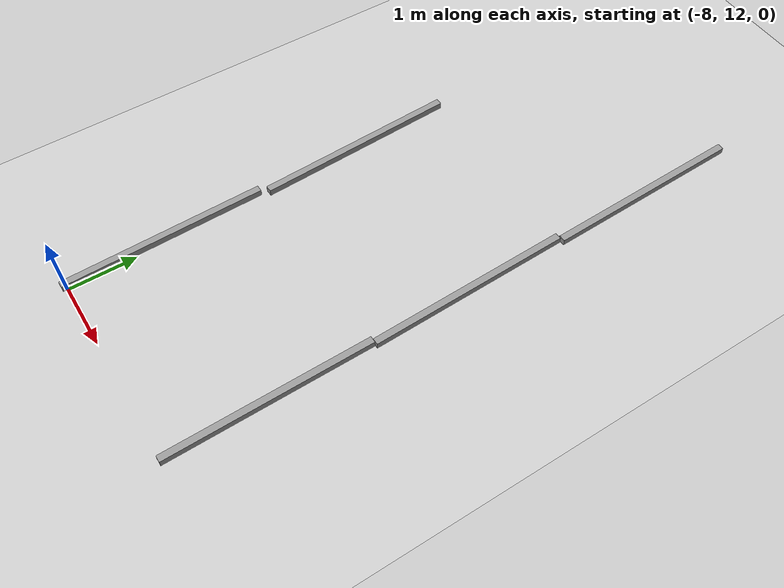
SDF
<sdf version="1.6">
 <world name="default">
  <model name="ground_plane">
   <static>1</static>
   <link name="link">
    <collision name="collision">
     <geometry><plane><normal>0 0 1</normal><size>100 100</size></plane></geometry>
     <surface>
      <contact><collide_bitmask>65535</collide_bitmask></contact>
      <friction><ode><mu>100</mu><mu2>50</mu2></ode></friction>
     </surface>
    </collision>
    <visual name="visual">
     <cast_shadows>0</cast_shadows>
     <geometry><plane><normal>0 0 1</normal><size>100 100</size></plane></geometry>
     <material>
      <script><uri>file://media/materials/scripts/gazebo.material</uri><name>Gazebo/Grey</name></script>
     </material>
    </visual>
   </link>
  </model>
  <model name="ruler_y_clone_0_clone">
   <link name="link_2">
    <inertial>
     <mass>1</mass>
     <inertia>
      <ixx>0.166667</ixx>
      <ixy>0</ixy>
      <ixz>0</ixz>
      <iyy>0.166667</iyy>
      <iyz>0</iyz>
      <izz>0.166667</izz>
     </inertia>
    </inertial>
    <visual name="visual">
     <geometry><box><size>0.1 3 0.1</size></box></geometry>
     <material>
      <lighting>1</lighting>
      <script><uri>file://media/materials/scripts/gazebo.material</uri><name>Gazebo/Grey</name></script>
      <shader type="vertex"><normal_map>__default__</normal_map></shader>
      <ambient>0.3 0.3 0.3 1</ambient>
      <diffuse>0.7 0.7 0.7 1</diffuse>
      <specular>0.01 0.01 0.01 1</specular>
      <emissive>0 0 0 1</emissive>
     </material>
    </visual>
    <collision name="collision">
     <geometry><box><size>0.1 3 0.1</size></box></geometry>
     <surface>
      <friction>
       <ode><mu>1</mu><mu2>1</mu2><fdir1>0 0 0</fdir1><slip1>0</slip1><slip2>0</slip2></ode>
       <torsional>
        <coefficient>1</coefficient>
        <patch_radius>0</patch_radius>
        <surface_radius>0</surface_radius>
        <use_patch_radius>1</use_patch_radius>
        <ode><slip>0</slip></ode>
       </torsional>
      </friction>
      <bounce><restitution_coefficient>0</restitution_coefficient><threshold>1e+06</threshold></bounce>
      <contact>
       <collide_without_contact>0</collide_without_contact>
       <collide_without_contact_bitmask>1</collide_without_contact_bitmask>
       <collide_bitmask>1</collide_bitmask>
       <ode>
        <soft_cfm>0</soft_cfm>
        <soft_erp>0.2</soft_erp>
        <kp>1e+13</kp>
        <kd>1</kd>
        <max_vel>0.01</max_vel>
        <min_depth>0</min_depth>
       </ode>
       <bullet>
        <split_impulse>1</split_impulse>
        <split_impulse_penetration_threshold>-0.01</split_impulse_penetration_threshold>
        <soft_cfm>0</soft_cfm>
        <soft_erp>0.2</soft_erp>
        <kp>1e+13</kp>
        <kd>1</kd>
       </bullet>
      </contact>
     </surface>
    </collision>
   </link>
   <static>0</static>
   <plugin name="ruler_y" filename="ruler_y"/>
   <pose>-5.08241 13.4844 0.049602 0.000266 6e-06 0.009093</pose>
  </model>
  <model name="ruler_y_clone_0_clone_clone">
   <link name="link_2">
    <inertial>
     <mass>1</mass>
     <inertia>
      <ixx>0.166667</ixx>
      <ixy>0</ixy>
      <ixz>0</ixz>
      <iyy>0.166667</iyy>
      <iyz>0</iyz>
      <izz>0.166667</izz>
     </inertia>
    </inertial>
    <visual name="visual">
     <geometry><box><size>0.1 3 0.1</size></box></geometry>
     <material>
      <lighting>1</lighting>
      <script><uri>file://media/materials/scripts/gazebo.material</uri><name>Gazebo/Grey</name></script>
      <shader type="vertex"><normal_map>__default__</normal_map></shader>
      <ambient>0.3 0.3 0.3 1</ambient>
      <diffuse>0.7 0.7 0.7 1</diffuse>
      <specular>0.01 0.01 0.01 1</specular>
      <emissive>0 0 0 1</emissive>
     </material>
    </visual>
    <collision name="collision">
     <geometry><box><size>0.1 3 0.1</size></box></geometry>
     <surface>
      <friction>
       <ode><mu>1</mu><mu2>1</mu2><fdir1>0 0 0</fdir1><slip1>0</slip1><slip2>0</slip2></ode>
       <torsional>
        <coefficient>1</coefficient>
        <patch_radius>0</patch_radius>
        <surface_radius>0</surface_radius>
        <use_patch_radius>1</use_patch_radius>
        <ode><slip>0</slip></ode>
       </torsional>
      </friction>
      <bounce><restitution_coefficient>0</restitution_coefficient><threshold>1e+06</threshold></bounce>
      <contact>
       <collide_without_contact>0</collide_without_contact>
       <collide_without_contact_bitmask>1</collide_without_contact_bitmask>
       <collide_bitmask>1</collide_bitmask>
       <ode>
        <soft_cfm>0</soft_cfm>
        <soft_erp>0.2</soft_erp>
        <kp>1e+13</kp>
        <kd>1</kd>
        <max_vel>0.01</max_vel>
        <min_depth>0</min_depth>
       </ode>
       <bullet>
        <split_impulse>1</split_impulse>
        <split_impulse_penetration_threshold>-0.01</split_impulse_penetration_threshold>
        <soft_cfm>0</soft_cfm>
        <soft_erp>0.2</soft_erp>
        <kp>1e+13</kp>
        <kd>1</kd>
       </bullet>
      </contact>
     </surface>
    </collision>
   </link>
   <static>0</static>
   <plugin name="ruler_y" filename="ruler_y"/>
   <pose>-5.09137 16.4888 0.049602 -0.000266 6e-06 0.026108</pose>
  </model>
  <model name="ruler_y_clone_0_clone_clone_clone">
   <link name="link_2">
    <inertial>
     <mass>1</mass>
     <inertia>
      <ixx>0.166667</ixx>
      <ixy>0</ixy>
      <ixz>0</ixz>
      <iyy>0.166667</iyy>
      <iyz>0</iyz>
      <izz>0.166667</izz>
     </inertia>
    </inertial>
    <visual name="visual">
     <geometry><box><size>0.1 3 0.1</size></box></geometry>
     <material>
      <lighting>1</lighting>
      <script><uri>file://media/materials/scripts/gazebo.material</uri><name>Gazebo/Grey</name></script>
      <shader type="vertex"><normal_map>__default__</normal_map></shader>
      <ambient>0.3 0.3 0.3 1</ambient>
      <diffuse>0.7 0.7 0.7 1</diffuse>
      <specular>0.01 0.01 0.01 1</specular>
      <emissive>0 0 0 1</emissive>
     </material>
    </visual>
    <collision name="collision">
     <geometry><box><size>0.1 3 0.1</size></box></geometry>
     <surface>
      <friction>
       <ode><mu>1</mu><mu2>1</mu2><fdir1>0 0 0</fdir1><slip1>0</slip1><slip2>0</slip2></ode>
       <torsional>
        <coefficient>1</coefficient>
        <patch_radius>0</patch_radius>
        <surface_radius>0</surface_radius>
        <use_patch_radius>1</use_patch_radius>
        <ode><slip>0</slip></ode>
       </torsional>
      </friction>
      <bounce><restitution_coefficient>0</restitution_coefficient><threshold>1e+06</threshold></bounce>
      <contact>
       <collide_without_contact>0</collide_without_contact>
       <collide_without_contact_bitmask>1</collide_without_contact_bitmask>
       <collide_bitmask>1</collide_bitmask>
       <ode>
        <soft_cfm>0</soft_cfm>
        <soft_erp>0.2</soft_erp>
        <kp>1e+13</kp>
        <kd>1</kd>
        <max_vel>0.01</max_vel>
        <min_depth>0</min_depth>
       </ode>
       <bullet>
        <split_impulse>1</split_impulse>
        <split_impulse_penetration_threshold>-0.01</split_impulse_penetration_threshold>
        <soft_cfm>0</soft_cfm>
        <soft_erp>0.2</soft_erp>
        <kp>1e+13</kp>
        <kd>1</kd>
       </bullet>
      </contact>
     </surface>
    </collision>
   </link>
   <static>0</static>
   <plugin name="ruler_y" filename="ruler_y"/>
   <pose>-5.10693 19.5041 0.049602 -0.000266 6e-06 0.026106</pose>
  </model>
  <model name="ruler_y_clone_0_clone_0_clone">
   <link name="link_2">
    <inertial>
     <mass>1</mass>
     <inertia>
      <ixx>0.166667</ixx>
      <ixy>0</ixy>
      <ixz>0</ixz>
      <iyy>0.166667</iyy>
      <iyz>0</iyz>
      <izz>0.166667</izz>
     </inertia>
    </inertial>
    <visual name="visual">
     <geometry><box><size>0.1 3 0.1</size></box></geometry>
     <material>
      <lighting>1</lighting>
      <script><uri>file://media/materials/scripts/gazebo.material</uri><name>Gazebo/Grey</name></script>
      <shader type="vertex"><normal_map>__default__</normal_map></shader>
      <ambient>0.3 0.3 0.3 1</ambient>
      <diffuse>0.7 0.7 0.7 1</diffuse>
      <specular>0.01 0.01 0.01 1</specular>
      <emissive>0 0 0 1</emissive>
     </material>
    </visual>
    <collision name="collision">
     <geometry><box><size>0.1 3 0.1</size></box></geometry>
     <surface>
      <friction>
       <ode><mu>1</mu><mu2>1</mu2><fdir1>0 0 0</fdir1><slip1>0</slip1><slip2>0</slip2></ode>
       <torsional>
        <coefficient>1</coefficient>
        <patch_radius>0</patch_radius>
        <surface_radius>0</surface_radius>
        <use_patch_radius>1</use_patch_radius>
        <ode><slip>0</slip></ode>
       </torsional>
      </friction>
      <bounce><restitution_coefficient>0</restitution_coefficient><threshold>1e+06</threshold></bounce>
      <contact>
       <collide_without_contact>0</collide_without_contact>
       <collide_without_contact_bitmask>1</collide_without_contact_bitmask>
       <collide_bitmask>1</collide_bitmask>
       <ode>
        <soft_cfm>0</soft_cfm>
        <soft_erp>0.2</soft_erp>
        <kp>1e+13</kp>
        <kd>1</kd>
        <max_vel>0.01</max_vel>
        <min_depth>0</min_depth>
       </ode>
       <bullet>
        <split_impulse>1</split_impulse>
        <split_impulse_penetration_threshold>-0.01</split_impulse_penetration_threshold>
        <soft_cfm>0</soft_cfm>
        <soft_erp>0.2</soft_erp>
        <kp>1e+13</kp>
        <kd>1</kd>
       </bullet>
      </contact>
     </surface>
    </collision>
   </link>
   <static>0</static>
   <plugin name="ruler_y" filename="ruler_y"/>
   <pose>-8.07804 13.4371 0.049602 0.000266 -6e-06 0.015407</pose>
  </model>
  <model name="ruler_y_clone_0_clone_0_clone_clone">
   <link name="link_2">
    <inertial>
     <mass>1</mass>
     <inertia>
      <ixx>0.166667</ixx>
      <ixy>0</ixy>
      <ixz>0</ixz>
      <iyy>0.166667</iyy>
      <iyz>0</iyz>
      <izz>0.166667</izz>
     </inertia>
    </inertial>
    <visual name="visual">
     <geometry><box><size>0.1 3 0.1</size></box></geometry>
     <material>
      <lighting>1</lighting>
      <script><uri>file://media/materials/scripts/gazebo.material</uri><name>Gazebo/Grey</name></script>
      <shader type="vertex"><normal_map>__default__</normal_map></shader>
      <ambient>0.3 0.3 0.3 1</ambient>
      <diffuse>0.7 0.7 0.7 1</diffuse>
      <specular>0.01 0.01 0.01 1</specular>
      <emissive>0 0 0 1</emissive>
     </material>
    </visual>
    <collision name="collision">
     <geometry><box><size>0.1 3 0.1</size></box></geometry>
     <surface>
      <friction>
       <ode><mu>1</mu><mu2>1</mu2><fdir1>0 0 0</fdir1><slip1>0</slip1><slip2>0</slip2></ode>
       <torsional>
        <coefficient>1</coefficient>
        <patch_radius>0</patch_radius>
        <surface_radius>0</surface_radius>
        <use_patch_radius>1</use_patch_radius>
        <ode><slip>0</slip></ode>
       </torsional>
      </friction>
      <bounce><restitution_coefficient>0</restitution_coefficient><threshold>1e+06</threshold></bounce>
      <contact>
       <collide_without_contact>0</collide_without_contact>
       <collide_without_contact_bitmask>1</collide_without_contact_bitmask>
       <collide_bitmask>1</collide_bitmask>
       <ode>
        <soft_cfm>0</soft_cfm>
        <soft_erp>0.2</soft_erp>
        <kp>1e+13</kp>
        <kd>1</kd>
        <max_vel>0.01</max_vel>
        <min_depth>0</min_depth>
       </ode>
       <bullet>
        <split_impulse>1</split_impulse>
        <split_impulse_penetration_threshold>-0.01</split_impulse_penetration_threshold>
        <soft_cfm>0</soft_cfm>
        <soft_erp>0.2</soft_erp>
        <kp>1e+13</kp>
        <kd>1</kd>
       </bullet>
      </contact>
     </surface>
    </collision>
   </link>
   <static>0</static>
   <plugin name="ruler_y" filename="ruler_y"/>
   <pose>-8.08392 16.5381 0.049602 -0.000266 6e-06 0.04215</pose>
  </model>
 </world>
</sdf>
